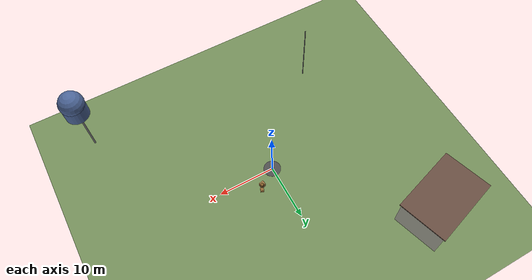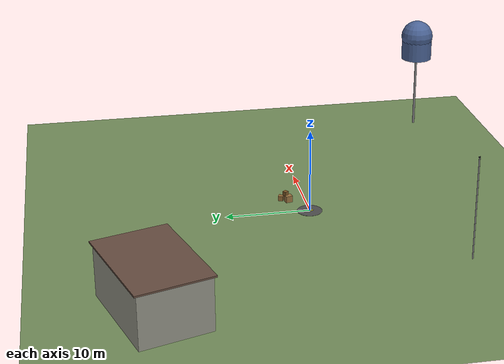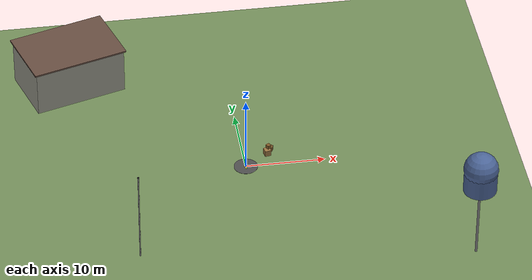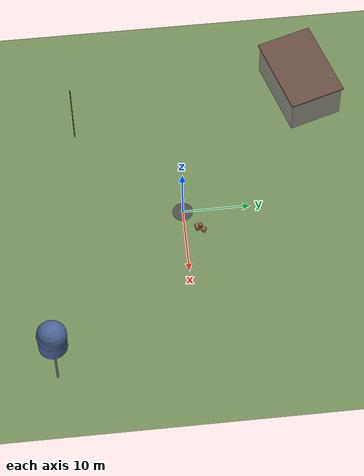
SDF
<sdf version="1.9">
 <world name="quadcopter_demo">
  <physics name="4ms" type="ignored">
   <max_step_size>0.004</max_step_size>
   <real_time_factor>1.0</real_time_factor>
  </physics>
  <plugin filename="gz-sim-physics-system" name="gz::sim::systems::Physics"/>
  <plugin filename="gz-sim-user-commands-system" name="gz::sim::systems::UserCommands"/>
  <plugin filename="gz-sim-scene-broadcaster-system" name="gz::sim::systems::SceneBroadcaster"/>
  <plugin filename="gz-sim-sensors-system" name="gz::sim::systems::Sensors">
   <render_engine>ogre2</render_engine>
  </plugin>
  <plugin filename="gz-sim-websocket-server-system" name="gz::sim::systems::WebsocketServer">
   <publication_hz>30</publication_hz>
   <port>9002</port>
   <max_connections>-1</max_connections>
  </plugin>
  <plugin filename="gz-sim-camera-stream-system" name="gz::sim::systems::CameraStream">
   <topic>/stream/control</topic>
   <default_bitrate>4000000</default_bitrate>
   <default_fps>30</default_fps>
  </plugin>
  <scene><ambient>0.5 0.5 0.5 1.0</ambient><background>0.3 0.5 0.8 1.0</background><grid>false</grid></scene>
  <light type="directional" name="sun">
   <pose>0 0 50 0 0 0</pose>
   <diffuse>1.0 0.95 0.9 1</diffuse>
   <specular>0.5 0.5 0.5 1</specular>
   <attenuation>
    <range>1000</range>
    <constant>0.9</constant>
    <linear>0.01</linear>
    <quadratic>0.001</quadratic>
   </attenuation>
   <direction>-0.5 0.3 -0.9</direction>
  </light>
  <model name="ground_plane">
   <static>true</static>
   <link name="link">
    <collision name="collision">
     <geometry><plane><normal>0 0 1</normal><size>200 200</size></plane></geometry>
    </collision>
    <visual name="visual">
     <geometry><plane><normal>0 0 1</normal><size>200 200</size></plane></geometry>
     <material>
      <ambient>0.45 0.55 0.35 1</ambient>
      <diffuse>0.45 0.55 0.35 1</diffuse>
      <specular>0.1 0.1 0.1 1</specular>
     </material>
    </visual>
   </link>
  </model>
  <model name="landing_pad">
   <static>true</static>
   <pose>0 0 0.01 0 0 0</pose>
   <link name="link">
    <visual name="pad">
     <geometry><cylinder><radius>1.5</radius><length>0.02</length></cylinder></geometry>
     <material><ambient>0.3 0.3 0.3 1</ambient><diffuse>0.3 0.3 0.3 1</diffuse></material>
    </visual>
    <visual name="h_bar1">
     <pose>0 0 0.02 0 0 0</pose>
     <geometry><box><size>0.15 1.0 0.01</size></box></geometry>
     <material><ambient>0.9 0.9 0.0 1</ambient><diffuse>0.9 0.9 0.0 1</diffuse></material>
    </visual>
    <visual name="h_bar2">
     <pose>0 0 0.02 0 0 1.5708</pose>
     <geometry><box><size>0.15 0.6 0.01</size></box></geometry>
     <material><ambient>0.9 0.9 0.0 1</ambient><diffuse>0.9 0.9 0.0 1</diffuse></material>
    </visual>
   </link>
  </model>
  <model name="sensor_pod">
   <pose>0 0 0.2 0 0 0</pose>
   <link name="pod_link">
    <inertial><mass>0.05</mass><inertia><ixx>0.0001</ixx><iyy>0.0001</iyy><izz>0.0001</izz></inertia></inertial>
    <sensor name="front_camera" type="camera">
     <pose>0.15 0 0 0 0 0</pose>
     <camera>
      <horizontal_fov>1.39626</horizontal_fov>
      <image><width>1280</width><height>720</height></image>
      <clip><near>0.1</near><far>500</far></clip>
     </camera>
     <always_on>1</always_on>
     <update_rate>30</update_rate>
     <visualize>false</visualize>
     <topic>X3/front_camera</topic>
    </sensor>
    <sensor name="down_camera" type="camera">
     <pose>0 0 -0.05 0 1.5708 0</pose>
     <camera>
      <horizontal_fov>1.39626</horizontal_fov>
      <image><width>640</width><height>480</height></image>
      <clip><near>0.1</near><far>500</far></clip>
     </camera>
     <always_on>1</always_on>
     <update_rate>15</update_rate>
     <visualize>false</visualize>
     <topic>X3/down_camera</topic>
    </sensor>
   </link>
  </model>
  <joint name="sensor_pod_joint" type="fixed">
   <parent>x3_uav::X3/base_link</parent>
   <child>sensor_pod::pod_link</child>
  </joint>
  <model name="tower_camera">
   <static>true</static>
   <pose>-15 -15 12 0 0.4 0.78</pose>
   <link name="link">
    <visual name="visual">
     <geometry><box><size>0.15 0.15 0.15</size></box></geometry>
     <material><ambient>0.2 0.2 0.2 1</ambient><diffuse>0.2 0.2 0.2 1</diffuse></material>
    </visual>
    <sensor name="tower_camera" type="camera">
     <camera>
      <horizontal_fov>1.2</horizontal_fov>
      <image><width>1280</width><height>720</height></image>
      <clip><near>0.5</near><far>1000</far></clip>
     </camera>
     <always_on>1</always_on>
     <update_rate>30</update_rate>
     <visualize>false</visualize>
     <topic>tower_camera</topic>
    </sensor>
   </link>
  </model>
  <model name="tower_structure">
   <static>true</static>
   <pose>-15 -15 0 0 0 0</pose>
   <link name="link">
    <visual name="pole">
     <pose>0 0 6 0 0 0</pose>
     <geometry><cylinder><radius>0.08</radius><length>12</length></cylinder></geometry>
     <material><ambient>0.5 0.5 0.5 1</ambient><diffuse>0.5 0.5 0.5 1</diffuse></material>
    </visual>
   </link>
  </model>
  <model name="warehouse">
   <static>true</static>
   <pose>-20 20 0 0 0 0.3</pose>
   <link name="link">
    <visual name="walls">
     <pose>0 0 3 0 0 0</pose>
     <geometry><box><size>12 8 6</size></box></geometry>
     <material><ambient>0.6 0.6 0.55 1</ambient><diffuse>0.6 0.6 0.55 1</diffuse></material>
    </visual>
    <visual name="roof">
     <pose>0 0 6.1 0 0 0</pose>
     <geometry><box><size>12.5 8.5 0.2</size></box></geometry>
     <material><ambient>0.4 0.3 0.25 1</ambient><diffuse>0.4 0.3 0.25 1</diffuse></material>
    </visual>
    <collision name="collision">
     <pose>0 0 3 0 0 0</pose>
     <geometry><box><size>12 8 6</size></box></geometry>
    </collision>
   </link>
  </model>
  <model name="water_tower">
   <static>true</static>
   <pose>25 -20 0 0 0 0</pose>
   <link name="link">
    <visual name="legs">
     <pose>0 0 5 0 0 0</pose>
     <geometry><cylinder><radius>0.15</radius><length>10</length></cylinder></geometry>
     <material><ambient>0.5 0.5 0.5 1</ambient><diffuse>0.5 0.5 0.5 1</diffuse></material>
    </visual>
    <visual name="tank">
     <pose>0 0 11 0 0 0</pose>
     <geometry><cylinder><radius>2.0</radius><length>3</length></cylinder></geometry>
     <material><ambient>0.3 0.4 0.6 1</ambient><diffuse>0.3 0.4 0.6 1</diffuse></material>
    </visual>
    <visual name="cap">
     <pose>0 0 12.6 0 0 0</pose>
     <geometry><sphere><radius>2.1</radius></sphere></geometry>
     <material><ambient>0.3 0.4 0.6 1</ambient><diffuse>0.3 0.4 0.6 1</diffuse></material>
    </visual>
   </link>
  </model>
  <model name="crate_1">
   <static>true</static>
   <pose>3 2 0.4 0 0 0.2</pose>
   <link name="link">
    <visual name="visual">
     <geometry><box><size>0.8 0.8 0.8</size></box></geometry>
     <material><ambient>0.6 0.45 0.25 1</ambient><diffuse>0.6 0.45 0.25 1</diffuse></material>
    </visual>
   </link>
  </model>
  <model name="crate_2">
   <static>true</static>
   <pose>3.5 2.8 0.3 0 0 -0.4</pose>
   <link name="link">
    <visual name="visual">
     <geometry><box><size>0.6 0.6 0.6</size></box></geometry>
     <material><ambient>0.55 0.4 0.2 1</ambient><diffuse>0.55 0.4 0.2 1</diffuse></material>
    </visual>
   </link>
  </model>
  <model name="crate_3">
   <static>true</static>
   <pose>3.2 2.3 1.0 0 0 0.6</pose>
   <link name="link">
    <visual name="visual">
     <geometry><box><size>0.5 0.5 0.5</size></box></geometry>
     <material><ambient>0.5 0.35 0.15 1</ambient><diffuse>0.5 0.35 0.15 1</diffuse></material>
    </visual>
   </link>
  </model>
 </world>
</sdf>
